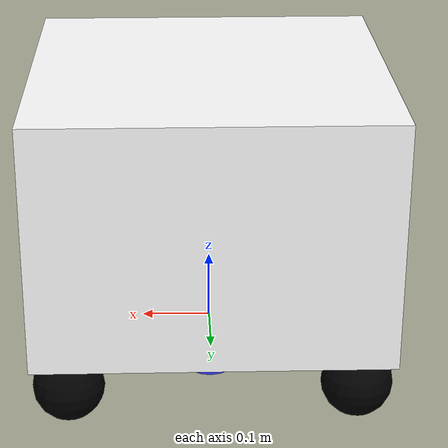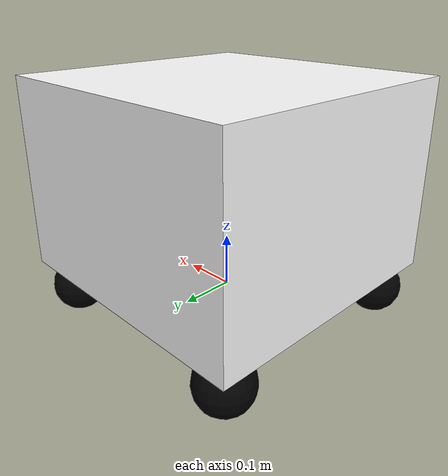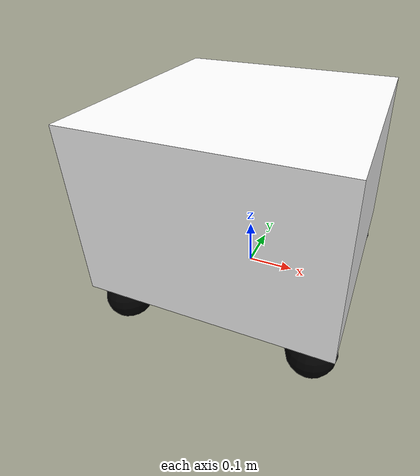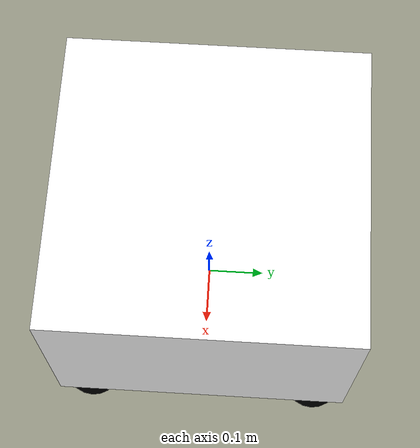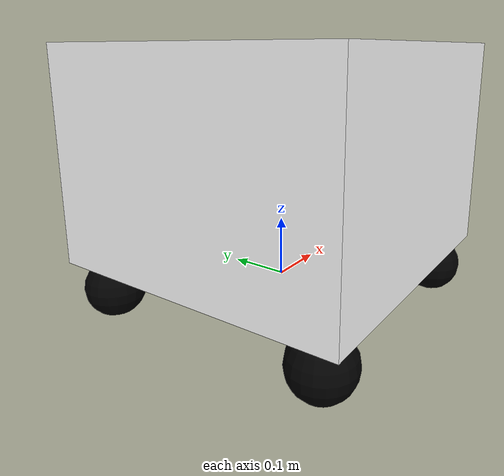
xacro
<?xml version="1.0"?>
<robot xmlns:xacro="http://www.ros.org/wiki/xacro" >

    <xacro:include filename="inertial_macros.xacro"/>

    <material name="white">
        <color rgba="1 1 1 1"/>
    </material>

    <material name="orange">
        <color rgba="1 0.3 0.1 1"/>
    </material>

    <material name="blue">
        <color rgba="0.2 0.2 1 1"/>
    </material>

    <material name="black">
        <color rgba="0 0 0 1"/>
    </material>

    <!-- BASE LINK -->

    <link name="base_link">
    </link>

    <!-- CHASSIS LINK -->

    <joint name="chassis_joint" type="fixed">
        <parent link="base_link"/>
        <child link="chassis"/>
        <origin xyz="-0.1 0 0"/>
    </joint>

    <link name="chassis">
        <visual>
            <origin xyz="0.1 0 0.22"/>
            <geometry>
                <box size="0.5 0.5 0.35"/>
            </geometry>
            <material name="white"/>
        </visual>
        <collision>
            <origin xyz="0.1 0 0.22"/>
            <geometry>
                <box size="0.5 0.5 0.35"/>
            </geometry>
        </collision>
        <xacro:inertial_box mass="17" x="0.5" y="0.5" z="0.35">
            <origin xyz="0.1 0 0.22" rpy="0 0 0"/>
        </xacro:inertial_box>
    </link>

    <!-- LEFT WHEEL LINK -->

    <joint name="left_wheel_joint" type="continuous">
        <parent link="base_link"/>
        <child link="left_wheel"/>
        <origin xyz="0 0.06 0" rpy="-${pi/2} 0 0"/>
        <axis xyz="0 0 1"/>
    </joint>

    <link name="left_wheel">
        <visual>
            <geometry>
                <cylinder radius="0.055" length="0.06"/>
            </geometry>
            <material name="blue"/>
        </visual>
        <collision>
            <geometry>
                <cylinder radius="0.055" length="0.06"/>
            </geometry>
        </collision>
        <xacro:inertial_cylinder mass="0.2" length="0.06" radius="0.055">
            <origin xyz="0 0 0" rpy="0 0 0"/>
        </xacro:inertial_cylinder>
    </link>

    <!-- RIGHT WHEEL LINK -->

    <joint name="right_wheel_joint" type="continuous">
        <parent link="base_link"/>
        <child link="right_wheel"/>
        <origin xyz="0 -0.06 0" rpy="-${pi/2} 0 0"/>
        <axis xyz="0 0 -1"/>
    </joint>

    <link name="right_wheel">
        <visual>
            <geometry>
                <cylinder radius="0.055" length="0.06"/>
            </geometry>
            <material name="blue"/>
        </visual>
        <collision>
            <geometry>
                <cylinder radius="0.055" length="0.06"/>
            </geometry>
        </collision>
        <xacro:inertial_cylinder mass="0.2" length="0.06" radius="0.055">
            <origin xyz="0 0 0" rpy="0 0 0"/>
        </xacro:inertial_cylinder>
    </link>

    <!-- CASTER WHEEL LINK 1 -->

    <joint name="caster_wheel_joint_1" type="fixed">
        <parent link="chassis"/>
        <child link="caster_wheel_1"/>
        <origin xyz="0.3 0.2 0"/>
    </joint>

    <link name="caster_wheel_1">
        <visual>
            <geometry>
                <sphere radius="0.05"/>
            </geometry>
            <material name="black"/>
        </visual>
        <collision>
            <geometry>
                <sphere radius="0.05"/>
            </geometry>
        </collision>
        <xacro:inertial_sphere mass="0.5" radius ="0.05">
            <origin xyz="0 0 0" rpy="0 0 0"/>
        </xacro:inertial_sphere>
    </link>

    <!-- CASTER WHEEL LINK 2 -->

    <joint name="caster_wheel_joint_2" type="fixed">
        <parent link="chassis"/>
        <child link="caster_wheel_2"/>
        <origin xyz="0.3 -0.2 0"/>
    </joint>

    <link name="caster_wheel_2">
        <visual>
            <geometry>
                <sphere radius="0.05"/>
            </geometry>
            <material name="black"/>
        </visual>
        <collision>
            <geometry>
                <sphere radius="0.05"/>
            </geometry>
        </collision>
        <xacro:inertial_sphere mass="0.5" radius ="0.05">
            <origin xyz="0 0 0" rpy="0 0 0"/>
        </xacro:inertial_sphere>
    </link>

    <!-- CASTER WHEEL LINK 3 -->

    <joint name="caster_wheel_joint_3" type="fixed">
        <parent link="chassis"/>
        <child link="caster_wheel_3"/>
        <origin xyz="-0.1 0.2 0"/>
    </joint>

    <link name="caster_wheel_3">
        <visual>
            <geometry>
                <sphere radius="0.05"/>
            </geometry>
            <material name="black"/>
        </visual>
        <collision>
            <geometry>
                <sphere radius="0.05"/>
            </geometry>
        </collision>
        <xacro:inertial_sphere mass="0.5" radius ="0.05">
            <origin xyz="0 0 0" rpy="0 0 0"/>
        </xacro:inertial_sphere>
    </link>

    <!-- CASTER WHEEL LINK 4 -->

    <joint name="caster_wheel_joint_4" type="fixed">
        <parent link="chassis"/>
        <child link="caster_wheel_4"/>
        <origin xyz="-0.1 -0.2 0"/>
    </joint>

    <link name="caster_wheel_4">
        <visual>
            <geometry>
                <sphere radius="0.05"/>
            </geometry>
            <material name="black"/>
        </visual>
        <collision>
            <geometry>
                <sphere radius="0.05"/>
            </geometry>
        </collision>
        <xacro:inertial_sphere mass="0.5" radius ="0.05">
            <origin xyz="0 0 0" rpy="0 0 0"/>
        </xacro:inertial_sphere>
    </link>

</robot>
